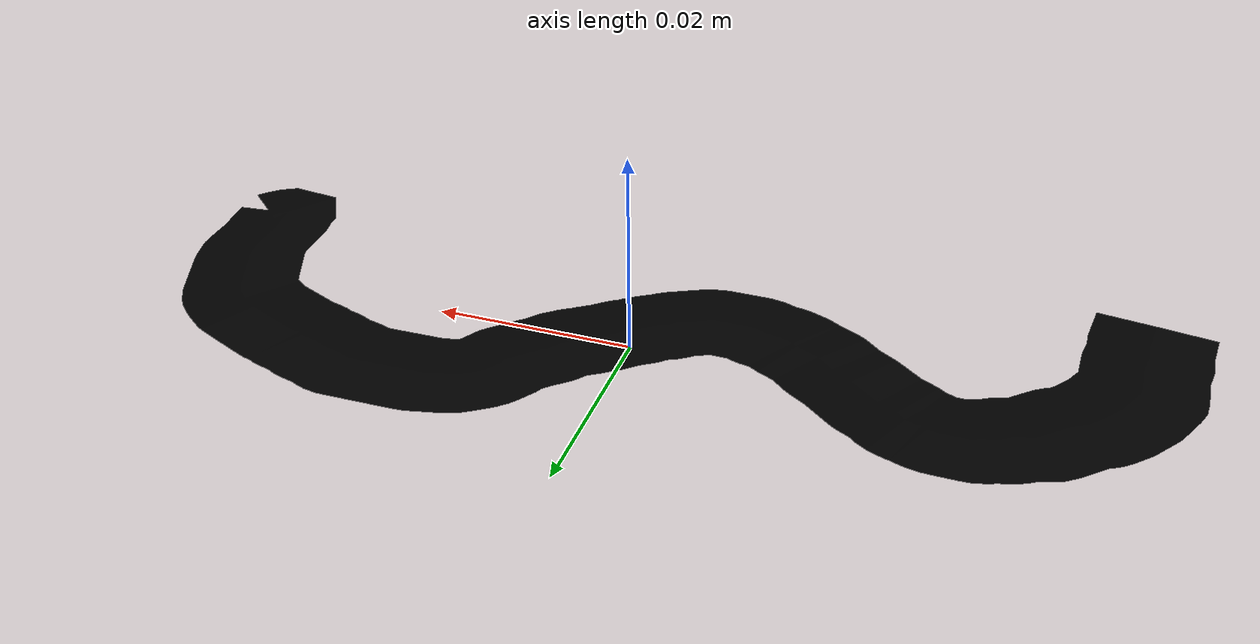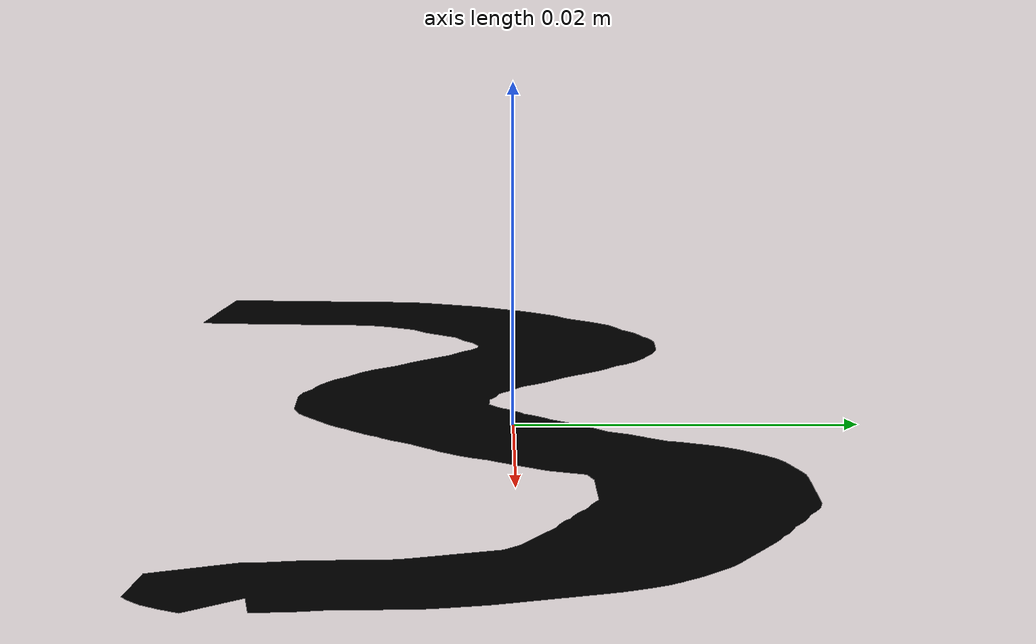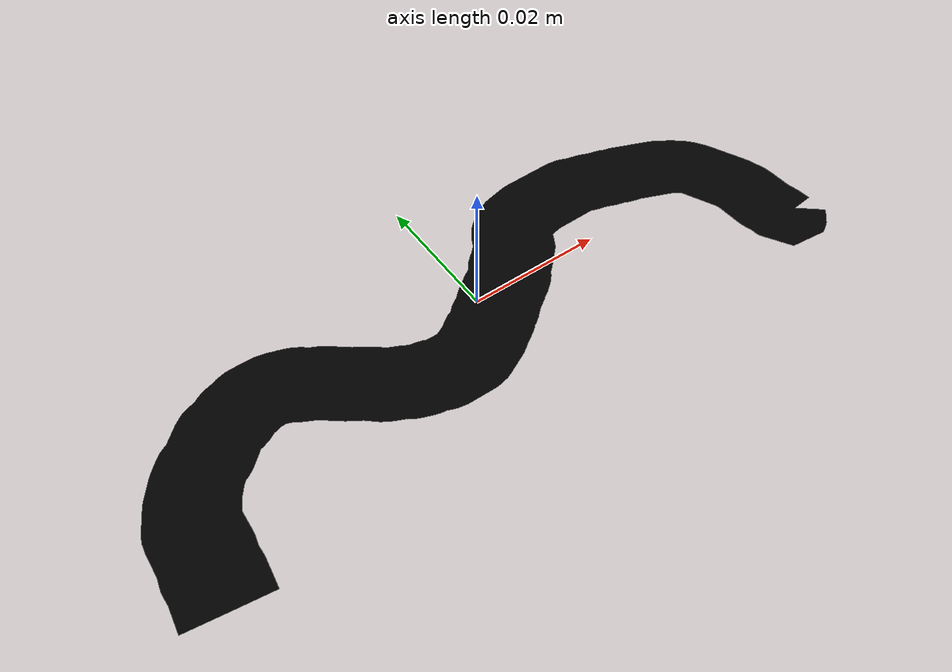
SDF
<?xml version="1.0" ?>
<sdf version="1.5">
  <model name="black_mark_10" >
    <static>true</static>
    <link name="link">
      <visual name="visual">
        <pose>0 0 0 0 0 0</pose>
        <geometry>
          <mesh>
            <uri>model://Black/10/1.dae</uri>
            <scale>1 1 1</scale>
          </mesh>
        </geometry>
      </visual>
    </link>
  </model>
</sdf>
